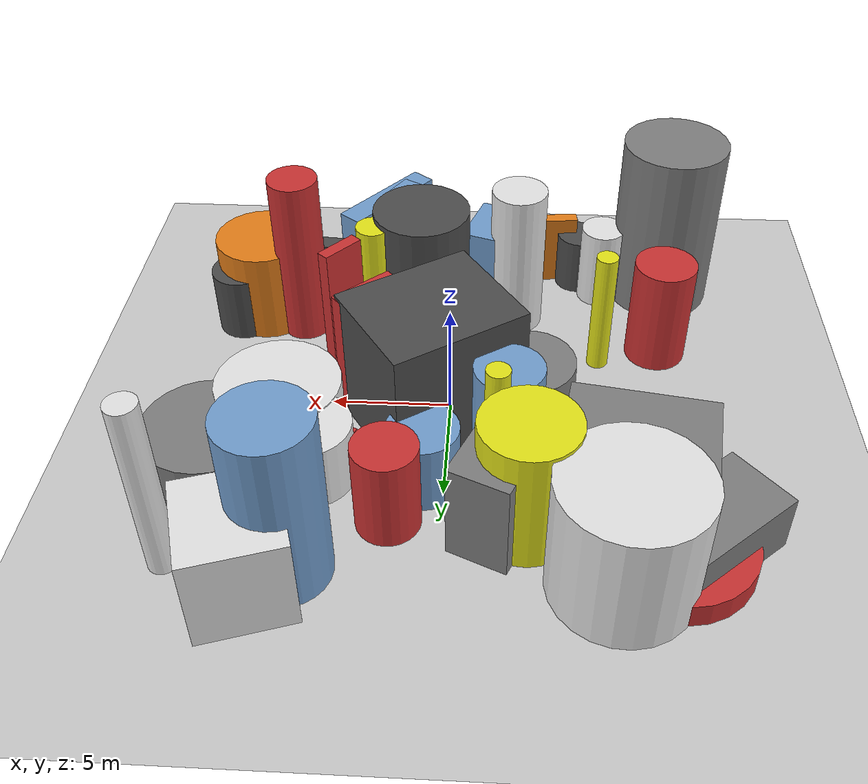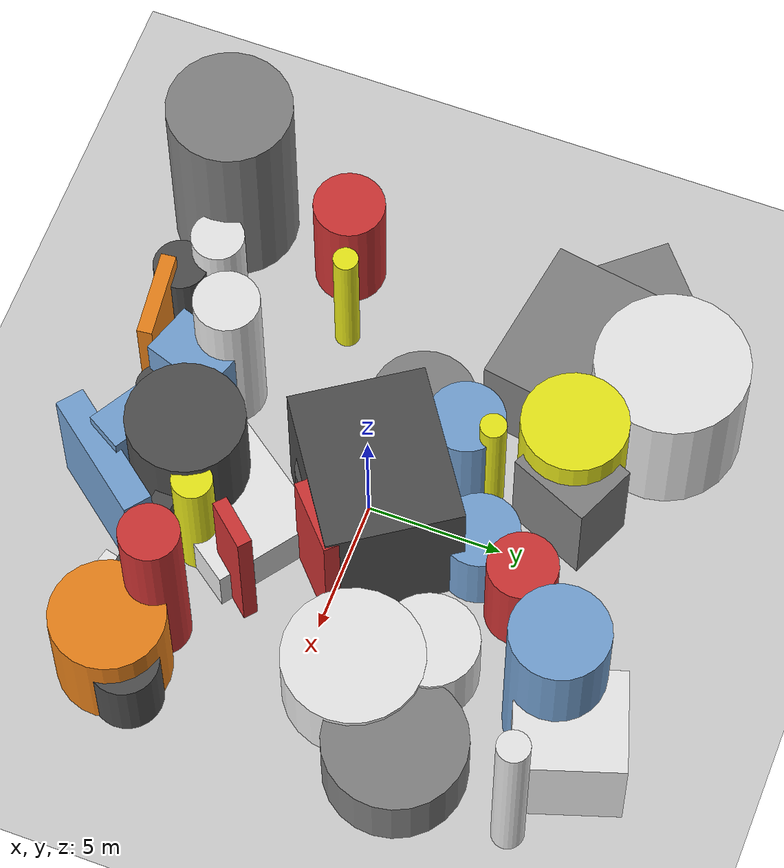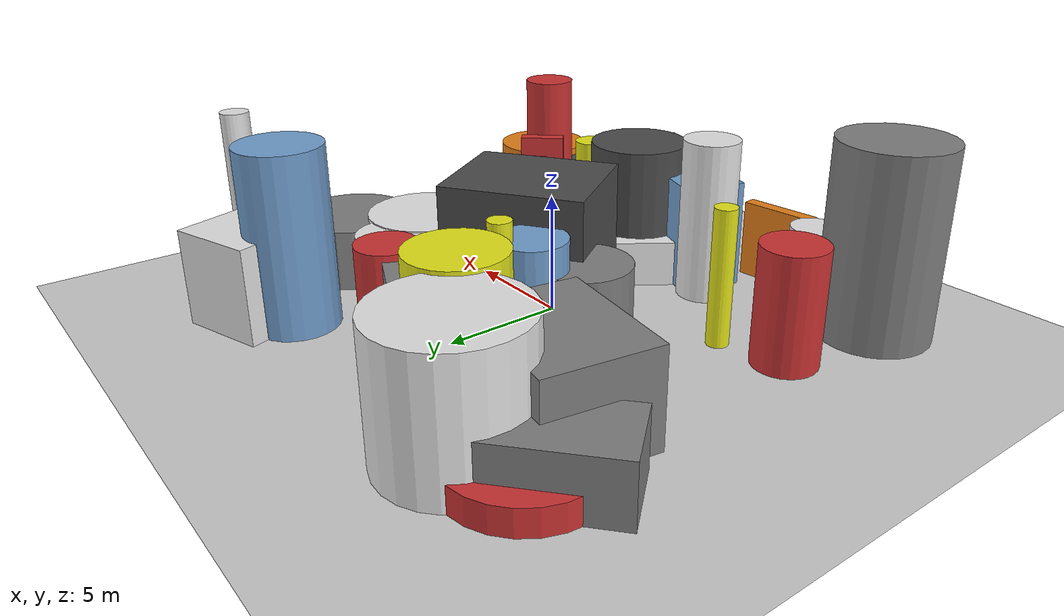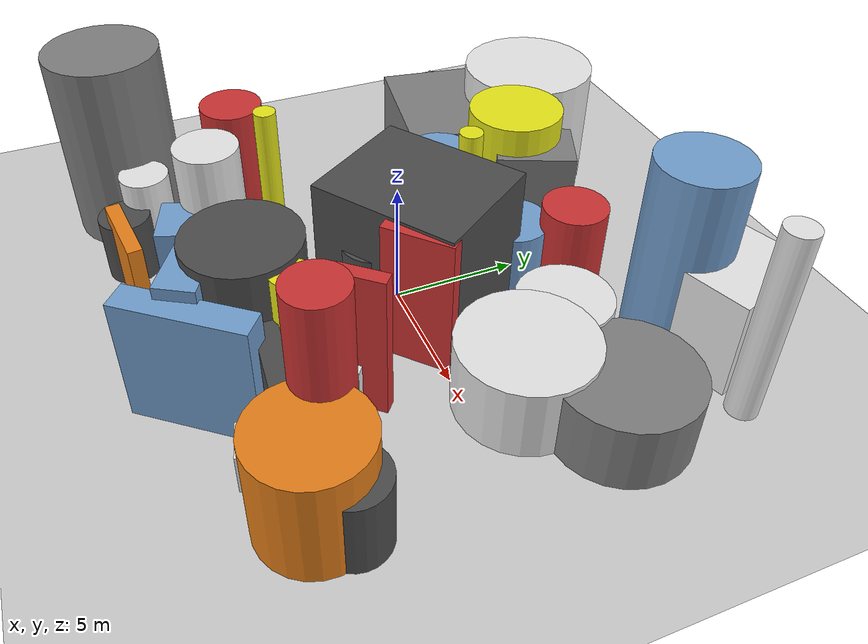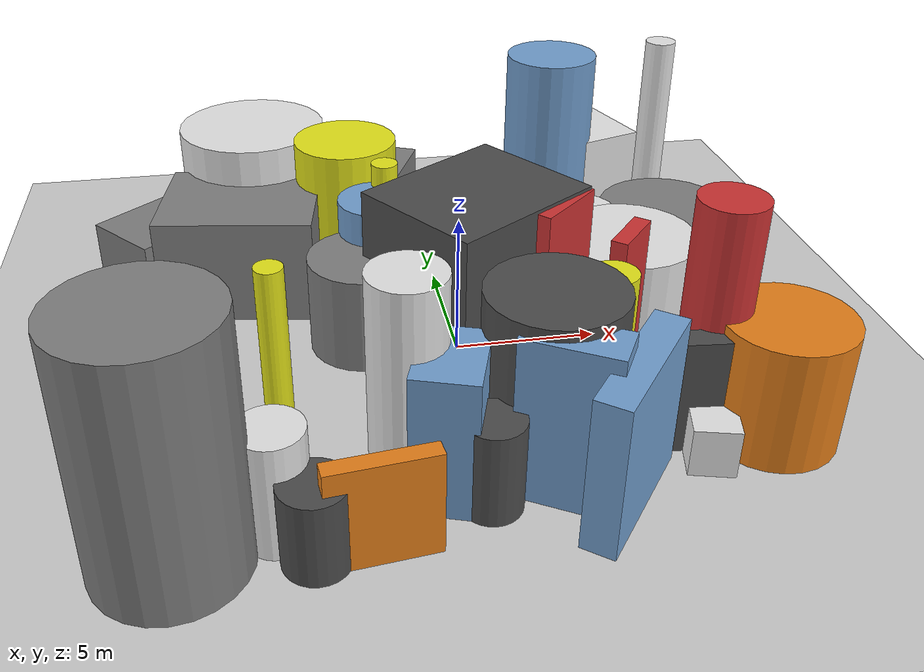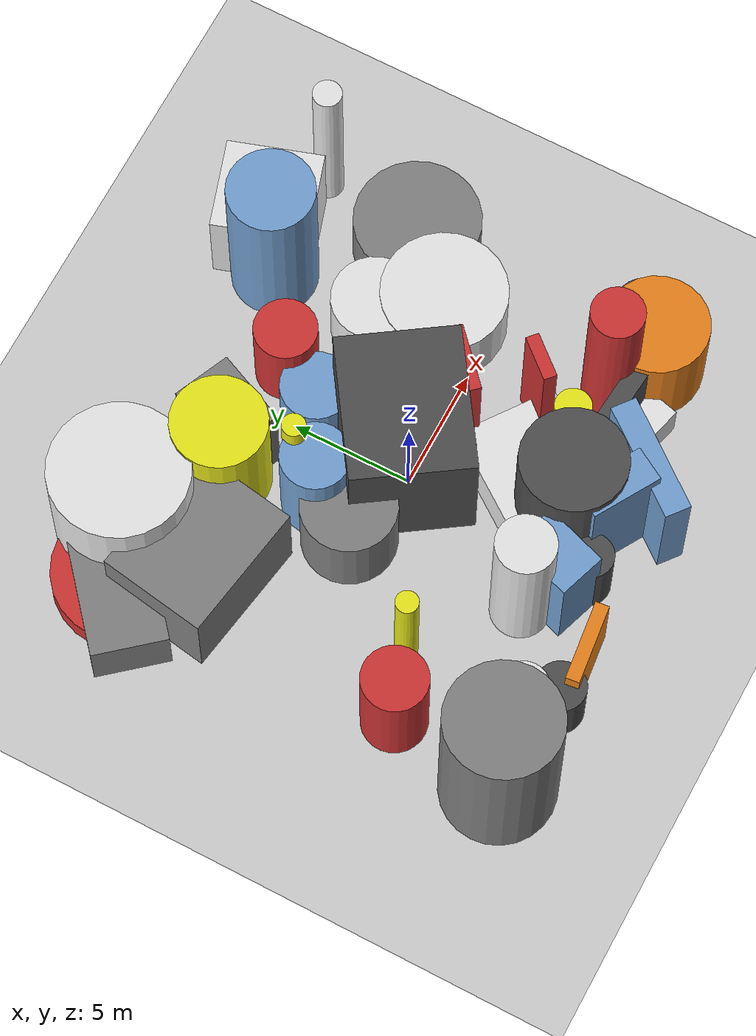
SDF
<?xml version='1.0'?>
<sdf version='1.6'>
  <world name='default'>
    <!-- Sun light -->
    <light name='sun' type='directional'>
      <cast_shadows>1</cast_shadows>
      <pose>0 0 10 0 0 0</pose>
      <diffuse>0.8 0.8 0.8 1</diffuse>
      <specular>0.2 0.2 0.2 1</specular>
      <attenuation>
        <range>1000</range>
        <constant>0.9</constant>
        <linear>0.01</linear>
        <quadratic>0.001</quadratic>
      </attenuation>
      <direction>-0.5 0.1 -0.9</direction>
    </light>

    <!-- Ground plane -->
    <model name='ground_plane'>
      <static>1</static>
      <link name='link'>
        <collision name='collision'>
          <geometry>
            <plane>
              <normal>0 0 1</normal>
              <size>100 100</size>
            </plane>
          </geometry>
          <surface>
            <contact>
              <collide_bitmask>65535</collide_bitmask>
              <ode/>
            </contact>
            <friction>
              <ode>
                <mu>100</mu>
                <mu2>50</mu2>
              </ode>
              <torsional><ode/></torsional>
            </friction>
            <bounce/>
          </surface>
          <max_contacts>10</max_contacts>
        </collision>
        <visual name='visual'>
          <cast_shadows>0</cast_shadows>
          <geometry>
            <plane>
              <normal>0 0 1</normal>
              <size>100 100</size>
            </plane>
          </geometry>
          <material>
            <script>
              <uri>file://media/materials/scripts/gazebo.material</uri>
              <n>Gazebo/Grey</n>
            </script>
          </material>
        </visual>
      </link>
    </model>

    <!-- Environment -->
    <magnetic_field>6e-06 2.3e-05 -4.2e-05</magnetic_field>
    <atmosphere type='adiabatic'/>
    <physics name='default_physics' default='0' type='ode'>
      <gravity>0 0 -9.8</gravity>
      <max_step_size>0.004</max_step_size>
      <real_time_factor>1</real_time_factor>
      <real_time_update_rate>250</real_time_update_rate>
    </physics>
    <scene>
      <ambient>0.4 0.4 0.4 1</ambient>
      <background>0.7 0.7 0.7 1</background>
      <shadows>1</shadows>
    </scene>
    <wind/>
    <spherical_coordinates>
      <surface_model>EARTH_WGS84</surface_model>
      <latitude_deg>0</latitude_deg>
      <longitude_deg>0</longitude_deg>
      <elevation>0</elevation>
      <heading_deg>0</heading_deg>
    </spherical_coordinates>

    <!-- ============ OBSTACLES (45) ============ -->
    <model name='obs_00'>
      <static>1</static>
      <link name='link'>
        <visual name='visual'>
          <geometry>
            <cylinder>
              <radius>1.3199</radius>
              <length>4.8167</length>
            </cylinder>
          </geometry>
          <material>
            <script>
              <n>Gazebo/Red</n>
              <uri>file://media/materials/scripts/gazebo.material</uri>
            </script>
            <ambient>0.8 0.2 0.2 1</ambient>
          </material>
        </visual>
        <collision name='collision'>
          <geometry>
            <cylinder>
              <radius>1.3199</radius>
              <length>4.8167</length>
            </cylinder>
          </geometry>
          <max_contacts>10</max_contacts>
          <surface>
            <contact><ode/></contact>
            <bounce/>
            <friction>
              <ode><mu>1</mu><mu2>1</mu2></ode>
              <torsional><ode/></torsional>
            </friction>
          </surface>
        </collision>
      </link>
      <pose>-8.9447 -4.1020 2.4083 0 0 0.0795</pose>
    </model>

    <model name='obs_01'>
      <static>1</static>
      <link name='link'>
        <visual name='visual'>
          <geometry>
            <cylinder>
              <radius>0.7376</radius>
              <length>5.6041</length>
            </cylinder>
          </geometry>
          <material>
            <script>
              <n>Gazebo/Yellow</n>
              <uri>file://media/materials/scripts/gazebo.material</uri>
            </script>
            <ambient>0.9 0.9 0.1 1</ambient>
          </material>
        </visual>
        <collision name='collision'>
          <geometry>
            <cylinder>
              <radius>0.7376</radius>
              <length>5.6041</length>
            </cylinder>
          </geometry>
          <max_contacts>10</max_contacts>
          <surface>
            <contact><ode/></contact>
            <bounce/>
            <friction>
              <ode><mu>1</mu><mu2>1</mu2></ode>
              <torsional><ode/></torsional>
            </friction>
          </surface>
        </collision>
      </link>
      <pose>3.6480 -5.1019 2.8021 0 0 1.6964</pose>
    </model>

    <model name='obs_02'>
      <static>1</static>
      <link name='link'>
        <visual name='visual'>
          <geometry>
            <box>
              <size>5.6886 4.4989 3.9065</size>
            </box>
          </geometry>
          <material>
            <script>
              <n>Gazebo/Grey</n>
              <uri>file://media/materials/scripts/gazebo.material</uri>
            </script>
            <ambient>0.5 0.5 0.5 1</ambient>
          </material>
        </visual>
        <collision name='collision'>
          <geometry>
            <box>
              <size>5.6886 4.4989 3.9065</size>
            </box>
          </geometry>
          <max_contacts>10</max_contacts>
          <surface>
            <contact><ode/></contact>
            <bounce/>
            <friction>
              <ode><mu>1</mu><mu2>1</mu2></ode>
              <torsional><ode/></torsional>
            </friction>
          </surface>
        </collision>
      </link>
      <pose>-7.2318 5.2615 1.9533 0 0 2.9827</pose>
    </model>

    <model name='obs_03'>
      <static>1</static>
      <link name='link'>
        <visual name='visual'>
          <geometry>
            <cylinder>
              <radius>1.9190</radius>
              <length>3.4603</length>
            </cylinder>
          </geometry>
          <material>
            <script>
              <n>Gazebo/Grey</n>
              <uri>file://media/materials/scripts/gazebo.material</uri>
            </script>
            <ambient>0.5 0.5 0.5 1</ambient>
          </material>
        </visual>
        <collision name='collision'>
          <geometry>
            <cylinder>
              <radius>1.9190</radius>
              <length>3.4603</length>
            </cylinder>
          </geometry>
          <max_contacts>10</max_contacts>
          <surface>
            <contact><ode/></contact>
            <bounce/>
            <friction>
              <ode><mu>1</mu><mu2>1</mu2></ode>
              <torsional><ode/></torsional>
            </friction>
          </surface>
        </collision>
      </link>
      <pose>-3.1646 0.9247 1.7302 0 0 1.4283</pose>
    </model>

    <model name='obs_04'>
      <static>1</static>
      <link name='link'>
        <visual name='visual'>
          <geometry>
            <cylinder>
              <radius>1.2864</radius>
              <length>3.0398</length>
            </cylinder>
          </geometry>
          <material>
            <script>
              <n>Gazebo/Blue</n>
              <uri>file://media/materials/scripts/gazebo.material</uri>
            </script>
            <ambient>0.447 0.624 0.812 1</ambient>
          </material>
        </visual>
        <collision name='collision'>
          <geometry>
            <cylinder>
              <radius>1.2864</radius>
              <length>3.0398</length>
            </cylinder>
          </geometry>
          <max_contacts>10</max_contacts>
          <surface>
            <contact><ode/></contact>
            <bounce/>
            <friction>
              <ode><mu>1</mu><mu2>1</mu2></ode>
              <torsional><ode/></torsional>
            </friction>
          </surface>
        </collision>
      </link>
      <pose>2.6525 -7.3107 1.5199 0 0 0.0560</pose>
    </model>

    <model name='obs_05'>
      <static>1</static>
      <link name='link'>
        <visual name='visual'>
          <geometry>
            <cylinder>
              <radius>1.3145</radius>
              <length>1.5698</length>
            </cylinder>
          </geometry>
          <material>
            <script>
              <n>Gazebo/DarkGrey</n>
              <uri>file://media/materials/scripts/gazebo.material</uri>
            </script>
            <ambient>0.3 0.3 0.3 1</ambient>
          </material>
        </visual>
        <collision name='collision'>
          <geometry>
            <cylinder>
              <radius>1.3145</radius>
              <length>1.5698</length>
            </cylinder>
          </geometry>
          <max_contacts>10</max_contacts>
          <surface>
            <contact><ode/></contact>
            <bounce/>
            <friction>
              <ode><mu>1</mu><mu2>1</mu2></ode>
              <torsional><ode/></torsional>
            </friction>
          </surface>
        </collision>
      </link>
      <pose>-4.2932 6.1719 0.7849 0 0 0.3008</pose>
    </model>

    <model name='obs_06'>
      <static>1</static>
      <link name='link'>
        <visual name='visual'>
          <geometry>
            <cylinder>
              <radius>1.7642</radius>
              <length>7.5440</length>
            </cylinder>
          </geometry>
          <material>
            <script>
              <n>Gazebo/Blue</n>
              <uri>file://media/materials/scripts/gazebo.material</uri>
            </script>
            <ambient>0.447 0.624 0.812 1</ambient>
          </material>
        </visual>
        <collision name='collision'>
          <geometry>
            <cylinder>
              <radius>1.7642</radius>
              <length>7.5440</length>
            </cylinder>
          </geometry>
          <max_contacts>10</max_contacts>
          <surface>
            <contact><ode/></contact>
            <bounce/>
            <friction>
              <ode><mu>1</mu><mu2>1</mu2></ode>
              <torsional><ode/></torsional>
            </friction>
          </surface>
        </collision>
      </link>
      <pose>5.4614 8.9017 3.7720 0 0 1.0480</pose>
    </model>

    <model name='obs_07'>
      <static>1</static>
      <link name='link'>
        <visual name='visual'>
          <geometry>
            <box>
              <size>1.4470 2.2078 1.6461</size>
            </box>
          </geometry>
          <material>
            <script>
              <n>Gazebo/White</n>
              <uri>file://media/materials/scripts/gazebo.material</uri>
            </script>
            <ambient>0.9 0.9 0.9 1</ambient>
          </material>
        </visual>
        <collision name='collision'>
          <geometry>
            <box>
              <size>1.4470 2.2078 1.6461</size>
            </box>
          </geometry>
          <max_contacts>10</max_contacts>
          <surface>
            <contact><ode/></contact>
            <bounce/>
            <friction>
              <ode><mu>1</mu><mu2>1</mu2></ode>
              <torsional><ode/></torsional>
            </friction>
          </surface>
        </collision>
      </link>
      <pose>6.4687 -6.9209 0.8231 0 0 2.8891</pose>
    </model>

    <model name='obs_08'>
      <static>1</static>
      <link name='link'>
        <visual name='visual'>
          <geometry>
            <box>
              <size>3.0630 5.4157 2.4187</size>
            </box>
          </geometry>
          <material>
            <script>
              <n>Gazebo/Grey</n>
              <uri>file://media/materials/scripts/gazebo.material</uri>
            </script>
            <ambient>0.5 0.5 0.5 1</ambient>
          </material>
        </visual>
        <collision name='collision'>
          <geometry>
            <box>
              <size>3.0630 5.4157 2.4187</size>
            </box>
          </geometry>
          <max_contacts>10</max_contacts>
          <surface>
            <contact><ode/></contact>
            <bounce/>
            <friction>
              <ode><mu>1</mu><mu2>1</mu2></ode>
              <torsional><ode/></torsional>
            </friction>
          </surface>
        </collision>
      </link>
      <pose>-9.7519 7.4675 1.2093 0 0 2.2786</pose>
    </model>

    <model name='obs_09'>
      <static>1</static>
      <link name='link'>
        <visual name='visual'>
          <geometry>
            <cylinder>
              <radius>1.7817</radius>
              <length>2.8194</length>
            </cylinder>
          </geometry>
          <material>
            <script>
              <n>Gazebo/White</n>
              <uri>file://media/materials/scripts/gazebo.material</uri>
            </script>
            <ambient>0.9 0.9 0.9 1</ambient>
          </material>
        </visual>
        <collision name='collision'>
          <geometry>
            <cylinder>
              <radius>1.7817</radius>
              <length>2.8194</length>
            </cylinder>
          </geometry>
          <max_contacts>10</max_contacts>
          <surface>
            <contact><ode/></contact>
            <bounce/>
            <friction>
              <ode><mu>1</mu><mu2>1</mu2></ode>
              <torsional><ode/></torsional>
            </friction>
          </surface>
        </collision>
      </link>
      <pose>5.2614 4.2519 1.4097 0 0 2.1752</pose>
    </model>

    <model name='obs_10'>
      <static>1</static>
      <link name='link'>
        <visual name='visual'>
          <geometry>
            <cylinder>
              <radius>0.5882</radius>
              <length>7.8674</length>
            </cylinder>
          </geometry>
          <material>
            <script>
              <n>Gazebo/White</n>
              <uri>file://media/materials/scripts/gazebo.material</uri>
            </script>
            <ambient>0.9 0.9 0.9 1</ambient>
          </material>
        </visual>
        <collision name='collision'>
          <geometry>
            <cylinder>
              <radius>0.5882</radius>
              <length>7.8674</length>
            </cylinder>
          </geometry>
          <max_contacts>10</max_contacts>
          <surface>
            <contact><ode/></contact>
            <bounce/>
            <friction>
              <ode><mu>1</mu><mu2>1</mu2></ode>
              <torsional><ode/></torsional>
            </friction>
          </surface>
        </collision>
      </link>
      <pose>9.9752 8.8615 3.9337 0 0 1.4008</pose>
    </model>

    <model name='obs_11'>
      <static>1</static>
      <link name='link'>
        <visual name='visual'>
          <geometry>
            <cylinder>
              <radius>0.9334</radius>
              <length>3.0762</length>
            </cylinder>
          </geometry>
          <material>
            <script>
              <n>Gazebo/DarkGrey</n>
              <uri>file://media/materials/scripts/gazebo.material</uri>
            </script>
            <ambient>0.3 0.3 0.3 1</ambient>
          </material>
        </visual>
        <collision name='collision'>
          <geometry>
            <cylinder>
              <radius>0.9334</radius>
              <length>3.0762</length>
            </cylinder>
          </geometry>
          <max_contacts>10</max_contacts>
          <surface>
            <contact><ode/></contact>
            <bounce/>
            <friction>
              <ode><mu>1</mu><mu2>1</mu2></ode>
              <torsional><ode/></torsional>
            </friction>
          </surface>
        </collision>
      </link>
      <pose>-0.5198 -8.0830 1.5381 0 0 0.9924</pose>
    </model>

    <model name='obs_12'>
      <static>1</static>
      <link name='link'>
        <visual name='visual'>
          <geometry>
            <cylinder>
              <radius>0.6479</radius>
              <length>2.7353</length>
            </cylinder>
          </geometry>
          <material>
            <script>
              <n>Gazebo/Yellow</n>
              <uri>file://media/materials/scripts/gazebo.material</uri>
            </script>
            <ambient>0.9 0.9 0.1 1</ambient>
          </material>
        </visual>
        <collision name='collision'>
          <geometry>
            <cylinder>
              <radius>0.6479</radius>
              <length>2.7353</length>
            </cylinder>
          </geometry>
          <max_contacts>10</max_contacts>
          <surface>
            <contact><ode/></contact>
            <bounce/>
            <friction>
              <ode><mu>1</mu><mu2>1</mu2></ode>
              <torsional><ode/></torsional>
            </friction>
          </surface>
        </collision>
      </link>
      <pose>0.0672 2.1737 1.3677 0 0 3.0668</pose>
    </model>

    <model name='obs_13'>
      <static>1</static>
      <link name='link'>
        <visual name='visual'>
          <geometry>
            <cylinder>
              <radius>1.2773</radius>
              <length>3.9804</length>
            </cylinder>
          </geometry>
          <material>
            <script>
              <n>Gazebo/Red</n>
              <uri>file://media/materials/scripts/gazebo.material</uri>
            </script>
            <ambient>0.8 0.2 0.2 1</ambient>
          </material>
        </visual>
        <collision name='collision'>
          <geometry>
            <cylinder>
              <radius>1.2773</radius>
              <length>3.9804</length>
            </cylinder>
          </geometry>
          <max_contacts>10</max_contacts>
          <surface>
            <contact><ode/></contact>
            <bounce/>
            <friction>
              <ode><mu>1</mu><mu2>1</mu2></ode>
              <torsional><ode/></torsional>
            </friction>
          </surface>
        </collision>
      </link>
      <pose>1.9906 6.4616 1.9902 0 0 0.2231</pose>
    </model>

    <model name='obs_14'>
      <static>1</static>
      <link name='link'>
        <visual name='visual'>
          <geometry>
            <box>
              <size>0.5652 3.2773 3.3876</size>
            </box>
          </geometry>
          <material>
            <script>
              <n>Gazebo/Orange</n>
              <uri>file://media/materials/scripts/gazebo.material</uri>
            </script>
            <ambient>0.9 0.5 0.1 1</ambient>
          </material>
        </visual>
        <collision name='collision'>
          <geometry>
            <box>
              <size>0.5652 3.2773 3.3876</size>
            </box>
          </geometry>
          <max_contacts>10</max_contacts>
          <surface>
            <contact><ode/></contact>
            <bounce/>
            <friction>
              <ode><mu>1</mu><mu2>1</mu2></ode>
              <torsional><ode/></torsional>
            </friction>
          </surface>
        </collision>
      </link>
      <pose>-3.8221 -9.5980 1.6938 0 0 1.6849</pose>
    </model>

    <model name='obs_15'>
      <static>1</static>
      <link name='link'>
        <visual name='visual'>
          <geometry>
            <cylinder>
              <radius>1.3204</radius>
              <length>3.5024</length>
            </cylinder>
          </geometry>
          <material>
            <script>
              <n>Gazebo/DarkGrey</n>
              <uri>file://media/materials/scripts/gazebo.material</uri>
            </script>
            <ambient>0.3 0.3 0.3 1</ambient>
          </material>
        </visual>
        <collision name='collision'>
          <geometry>
            <cylinder>
              <radius>1.3204</radius>
              <length>3.5024</length>
            </cylinder>
          </geometry>
          <max_contacts>10</max_contacts>
          <surface>
            <contact><ode/></contact>
            <bounce/>
            <friction>
              <ode><mu>1</mu><mu2>1</mu2></ode>
              <torsional><ode/></torsional>
            </friction>
          </surface>
        </collision>
      </link>
      <pose>0.5854 -1.1339 1.7512 0 0 2.4050</pose>
    </model>

    <model name='obs_16'>
      <static>1</static>
      <link name='link'>
        <visual name='visual'>
          <geometry>
            <cylinder>
              <radius>2.5538</radius>
              <length>2.8765</length>
            </cylinder>
          </geometry>
          <material>
            <script>
              <n>Gazebo/White</n>
              <uri>file://media/materials/scripts/gazebo.material</uri>
            </script>
            <ambient>0.9 0.9 0.9 1</ambient>
          </material>
        </visual>
        <collision name='collision'>
          <geometry>
            <cylinder>
              <radius>2.5538</radius>
              <length>2.8765</length>
            </cylinder>
          </geometry>
          <max_contacts>10</max_contacts>
          <surface>
            <contact><ode/></contact>
            <bounce/>
            <friction>
              <ode><mu>1</mu><mu2>1</mu2></ode>
              <torsional><ode/></torsional>
            </friction>
          </surface>
        </collision>
      </link>
      <pose>6.7511 1.9867 1.4383 0 0 1.5808</pose>
    </model>

    <model name='obs_17'>
      <static>1</static>
      <link name='link'>
        <visual name='visual'>
          <geometry>
            <cylinder>
              <radius>2.0687</radius>
              <length>4.2086</length>
            </cylinder>
          </geometry>
          <material>
            <script>
              <n>Gazebo/Orange</n>
              <uri>file://media/materials/scripts/gazebo.material</uri>
            </script>
            <ambient>0.9 0.5 0.1 1</ambient>
          </material>
        </visual>
        <collision name='collision'>
          <geometry>
            <cylinder>
              <radius>2.0687</radius>
              <length>4.2086</length>
            </cylinder>
          </geometry>
          <max_contacts>10</max_contacts>
          <surface>
            <contact><ode/></contact>
            <bounce/>
            <friction>
              <ode><mu>1</mu><mu2>1</mu2></ode>
              <torsional><ode/></torsional>
            </friction>
          </surface>
        </collision>
      </link>
      <pose>8.8200 -6.2203 2.1043 0 0 2.4082</pose>
    </model>

    <model name='obs_18'>
      <static>1</static>
      <link name='link'>
        <visual name='visual'>
          <geometry>
            <cylinder>
              <radius>2.9676</radius>
              <length>1.0503</length>
            </cylinder>
          </geometry>
          <material>
            <script>
              <n>Gazebo/Red</n>
              <uri>file://media/materials/scripts/gazebo.material</uri>
            </script>
            <ambient>0.8 0.2 0.2 1</ambient>
          </material>
        </visual>
        <collision name='collision'>
          <geometry>
            <cylinder>
              <radius>2.9676</radius>
              <length>1.0503</length>
            </cylinder>
          </geometry>
          <max_contacts>10</max_contacts>
          <surface>
            <contact><ode/></contact>
            <bounce/>
            <friction>
              <ode><mu>1</mu><mu2>1</mu2></ode>
              <torsional><ode/></torsional>
            </friction>
          </surface>
        </collision>
      </link>
      <pose>-8.6935 7.6959 0.5252 0 0 1.0818</pose>
    </model>

    <model name='obs_19'>
      <static>1</static>
      <link name='link'>
        <visual name='visual'>
          <geometry>
            <cylinder>
              <radius>1.2669</radius>
              <length>3.0052</length>
            </cylinder>
          </geometry>
          <material>
            <script>
              <n>Gazebo/DarkGrey</n>
              <uri>file://media/materials/scripts/gazebo.material</uri>
            </script>
            <ambient>0.3 0.3 0.3 1</ambient>
          </material>
        </visual>
        <collision name='collision'>
          <geometry>
            <cylinder>
              <radius>1.2669</radius>
              <length>3.0052</length>
            </cylinder>
          </geometry>
          <max_contacts>10</max_contacts>
          <surface>
            <contact><ode/></contact>
            <bounce/>
            <friction>
              <ode><mu>1</mu><mu2>1</mu2></ode>
              <torsional><ode/></torsional>
            </friction>
          </surface>
        </collision>
      </link>
      <pose>9.7789 -5.3092 1.5026 0 0 2.3118</pose>
    </model>

    <model name='obs_20'>
      <static>1</static>
      <link name='link'>
        <visual name='visual'>
          <geometry>
            <box>
              <size>2.0065 2.7507 4.6880</size>
            </box>
          </geometry>
          <material>
            <script>
              <n>Gazebo/Blue</n>
              <uri>file://media/materials/scripts/gazebo.material</uri>
            </script>
            <ambient>0.447 0.624 0.812 1</ambient>
          </material>
        </visual>
        <collision name='collision'>
          <geometry>
            <box>
              <size>2.0065 2.7507 4.6880</size>
            </box>
          </geometry>
          <max_contacts>10</max_contacts>
          <surface>
            <contact><ode/></contact>
            <bounce/>
            <friction>
              <ode><mu>1</mu><mu2>1</mu2></ode>
              <torsional><ode/></torsional>
            </friction>
          </surface>
        </collision>
      </link>
      <pose>-1.5744 -7.1123 2.3440 0 0 2.8176</pose>
    </model>

    <model name='obs_21'>
      <static>1</static>
      <link name='link'>
        <visual name='visual'>
          <geometry>
            <cylinder>
              <radius>2.5723</radius>
              <length>2.6783</length>
            </cylinder>
          </geometry>
          <material>
            <script>
              <n>Gazebo/Grey</n>
              <uri>file://media/materials/scripts/gazebo.material</uri>
            </script>
            <ambient>0.5 0.5 0.5 1</ambient>
          </material>
        </visual>
        <collision name='collision'>
          <geometry>
            <cylinder>
              <radius>2.5723</radius>
              <length>2.6783</length>
            </cylinder>
          </geometry>
          <max_contacts>10</max_contacts>
          <surface>
            <contact><ode/></contact>
            <bounce/>
            <friction>
              <ode><mu>1</mu><mu2>1</mu2></ode>
              <torsional><ode/></torsional>
            </friction>
          </surface>
        </collision>
      </link>
      <pose>9.1063 4.4087 1.3391 0 0 1.8812</pose>
    </model>

    <model name='obs_22'>
      <static>1</static>
      <link name='link'>
        <visual name='visual'>
          <geometry>
            <cylinder>
              <radius>0.9868</radius>
              <length>3.7595</length>
            </cylinder>
          </geometry>
          <material>
            <script>
              <n>Gazebo/White</n>
              <uri>file://media/materials/scripts/gazebo.material</uri>
            </script>
            <ambient>0.9 0.9 0.9 1</ambient>
          </material>
        </visual>
        <collision name='collision'>
          <geometry>
            <cylinder>
              <radius>0.9868</radius>
              <length>3.7595</length>
            </cylinder>
          </geometry>
          <max_contacts>10</max_contacts>
          <surface>
            <contact><ode/></contact>
            <bounce/>
            <friction>
              <ode><mu>1</mu><mu2>1</mu2></ode>
              <torsional><ode/></torsional>
            </friction>
          </surface>
        </collision>
      </link>
      <pose>-6.6112 -8.3246 1.8798 0 0 2.4303</pose>
    </model>

    <model name='obs_23'>
      <static>1</static>
      <link name='link'>
        <visual name='visual'>
          <geometry>
            <cylinder>
              <radius>0.4609</radius>
              <length>5.6678</length>
            </cylinder>
          </geometry>
          <material>
            <script>
              <n>Gazebo/Yellow</n>
              <uri>file://media/materials/scripts/gazebo.material</uri>
            </script>
            <ambient>0.9 0.9 0.1 1</ambient>
          </material>
        </visual>
        <collision name='collision'>
          <geometry>
            <cylinder>
              <radius>0.4609</radius>
              <length>5.6678</length>
            </cylinder>
          </geometry>
          <max_contacts>10</max_contacts>
          <surface>
            <contact><ode/></contact>
            <bounce/>
            <friction>
              <ode><mu>1</mu><mu2>1</mu2></ode>
              <torsional><ode/></torsional>
            </friction>
          </surface>
        </collision>
      </link>
      <pose>-6.3430 -3.2384 2.8339 0 0 2.8622</pose>
    </model>

    <model name='obs_24'>
      <static>1</static>
      <link name='link'>
        <visual name='visual'>
          <geometry>
            <cylinder>
              <radius>1.0756</radius>
              <length>7.8145</length>
            </cylinder>
          </geometry>
          <material>
            <script>
              <n>Gazebo/Red</n>
              <uri>file://media/materials/scripts/gazebo.material</uri>
            </script>
            <ambient>0.8 0.2 0.2 1</ambient>
          </material>
        </visual>
        <collision name='collision'>
          <geometry>
            <cylinder>
              <radius>1.0756</radius>
              <length>7.8145</length>
            </cylinder>
          </geometry>
          <max_contacts>10</max_contacts>
          <surface>
            <contact><ode/></contact>
            <bounce/>
            <friction>
              <ode><mu>1</mu><mu2>1</mu2></ode>
              <torsional><ode/></torsional>
            </friction>
          </surface>
        </collision>
      </link>
      <pose>6.9547 -5.2036 3.9073 0 0 0.7216</pose>
    </model>

    <model name='obs_25'>
      <static>1</static>
      <link name='link'>
        <visual name='visual'>
          <geometry>
            <box>
              <size>1.8813 0.5437 5.8709</size>
            </box>
          </geometry>
          <material>
            <script>
              <n>Gazebo/Red</n>
              <uri>file://media/materials/scripts/gazebo.material</uri>
            </script>
            <ambient>0.8 0.2 0.2 1</ambient>
          </material>
        </visual>
        <collision name='collision'>
          <geometry>
            <box>
              <size>1.8813 0.5437 5.8709</size>
            </box>
          </geometry>
          <max_contacts>10</max_contacts>
          <surface>
            <contact><ode/></contact>
            <bounce/>
            <friction>
              <ode><mu>1</mu><mu2>1</mu2></ode>
              <torsional><ode/></torsional>
            </friction>
          </surface>
        </collision>
      </link>
      <pose>4.7896 -3.1388 2.9355 0 0 0.8531</pose>
    </model>

    <model name='obs_26'>
      <static>1</static>
      <link name='link'>
        <visual name='visual'>
          <geometry>
            <box>
              <size>3.1799 2.4760 4.2749</size>
            </box>
          </geometry>
          <material>
            <script>
              <n>Gazebo/Grey</n>
              <uri>file://media/materials/scripts/gazebo.material</uri>
            </script>
            <ambient>0.5 0.5 0.5 1</ambient>
          </material>
        </visual>
        <collision name='collision'>
          <geometry>
            <box>
              <size>3.1799 2.4760 4.2749</size>
            </box>
          </geometry>
          <max_contacts>10</max_contacts>
          <surface>
            <contact><ode/></contact>
            <bounce/>
            <friction>
              <ode><mu>1</mu><mu2>1</mu2></ode>
              <torsional><ode/></torsional>
            </friction>
          </surface>
        </collision>
      </link>
      <pose>-2.0194 6.8573 2.1375 0 0 1.1580</pose>
    </model>

    <model name='obs_27'>
      <static>1</static>
      <link name='link'>
        <visual name='visual'>
          <geometry>
            <cylinder>
              <radius>1.2020</radius>
              <length>6.8882</length>
            </cylinder>
          </geometry>
          <material>
            <script>
              <n>Gazebo/White</n>
              <uri>file://media/materials/scripts/gazebo.material</uri>
            </script>
            <ambient>0.9 0.9 0.9 1</ambient>
          </material>
        </visual>
        <collision name='collision'>
          <geometry>
            <cylinder>
              <radius>1.2020</radius>
              <length>6.8882</length>
            </cylinder>
          </geometry>
          <max_contacts>10</max_contacts>
          <surface>
            <contact><ode/></contact>
            <bounce/>
            <friction>
              <ode><mu>1</mu><mu2>1</mu2></ode>
              <torsional><ode/></torsional>
            </friction>
          </surface>
        </collision>
      </link>
      <pose>-2.6589 -6.2693 3.4441 0 0 2.6211</pose>
    </model>

    <model name='obs_28'>
      <static>1</static>
      <link name='link'>
        <visual name='visual'>
          <geometry>
            <box>
              <size>4.9496 5.9355 5.8550</size>
            </box>
          </geometry>
          <material>
            <script>
              <n>Gazebo/DarkGrey</n>
              <uri>file://media/materials/scripts/gazebo.material</uri>
            </script>
            <ambient>0.3 0.3 0.3 1</ambient>
          </material>
        </visual>
        <collision name='collision'>
          <geometry>
            <box>
              <size>4.9496 5.9355 5.8550</size>
            </box>
          </geometry>
          <max_contacts>10</max_contacts>
          <surface>
            <contact><ode/></contact>
            <bounce/>
            <friction>
              <ode><mu>1</mu><mu2>1</mu2></ode>
              <torsional><ode/></torsional>
            </friction>
          </surface>
        </collision>
      </link>
      <pose>0.7063 0.5592 2.9275 0 0 2.1636</pose>
    </model>

    <model name='obs_29'>
      <static>1</static>
      <link name='link'>
        <visual name='visual'>
          <geometry>
            <box>
              <size>3.1171 2.7562 5.7320</size>
            </box>
          </geometry>
          <material>
            <script>
              <n>Gazebo/Red</n>
              <uri>file://media/materials/scripts/gazebo.material</uri>
            </script>
            <ambient>0.8 0.2 0.2 1</ambient>
          </material>
        </visual>
        <collision name='collision'>
          <geometry>
            <box>
              <size>3.1171 2.7562 5.7320</size>
            </box>
          </geometry>
          <max_contacts>10</max_contacts>
          <surface>
            <contact><ode/></contact>
            <bounce/>
            <friction>
              <ode><mu>1</mu><mu2>1</mu2></ode>
              <torsional><ode/></torsional>
            </friction>
          </surface>
        </collision>
      </link>
      <pose>2.5880 0.3726 2.8660 0 0 2.3147</pose>
    </model>

    <model name='obs_30'>
      <static>1</static>
      <link name='link'>
        <visual name='visual'>
          <geometry>
            <cylinder>
              <radius>2.2986</radius>
              <length>7.9777</length>
            </cylinder>
          </geometry>
          <material>
            <script>
              <n>Gazebo/Grey</n>
              <uri>file://media/materials/scripts/gazebo.material</uri>
            </script>
            <ambient>0.5 0.5 0.5 1</ambient>
          </material>
        </visual>
        <collision name='collision'>
          <geometry>
            <cylinder>
              <radius>2.2986</radius>
              <length>7.9777</length>
            </cylinder>
          </geometry>
          <max_contacts>10</max_contacts>
          <surface>
            <contact><ode/></contact>
            <bounce/>
            <friction>
              <ode><mu>1</mu><mu2>1</mu2></ode>
              <torsional><ode/></torsional>
            </friction>
          </surface>
        </collision>
      </link>
      <pose>-9.4747 -8.8221 3.9888 0 0 0.0091</pose>
    </model>

    <model name='obs_31'>
      <static>1</static>
      <link name='link'>
        <visual name='visual'>
          <geometry>
            <cylinder>
              <radius>1.9251</radius>
              <length>5.4525</length>
            </cylinder>
          </geometry>
          <material>
            <script>
              <n>Gazebo/Yellow</n>
              <uri>file://media/materials/scripts/gazebo.material</uri>
            </script>
            <ambient>0.9 0.9 0.1 1</ambient>
          </material>
        </visual>
        <collision name='collision'>
          <geometry>
            <cylinder>
              <radius>1.9251</radius>
              <length>5.4525</length>
            </cylinder>
          </geometry>
          <max_contacts>10</max_contacts>
          <surface>
            <contact><ode/></contact>
            <bounce/>
            <friction>
              <ode><mu>1</mu><mu2>1</mu2></ode>
              <torsional><ode/></torsional>
            </friction>
          </surface>
        </collision>
      </link>
      <pose>-3.1653 6.5107 2.7262 0 0 1.3607</pose>
    </model>

    <model name='obs_32'>
      <static>1</static>
      <link name='link'>
        <visual name='visual'>
          <geometry>
            <cylinder>
              <radius>2.1366</radius>
              <length>5.8548</length>
            </cylinder>
          </geometry>
          <material>
            <script>
              <n>Gazebo/DarkGrey</n>
              <uri>file://media/materials/scripts/gazebo.material</uri>
            </script>
            <ambient>0.3 0.3 0.3 1</ambient>
          </material>
        </visual>
        <collision name='collision'>
          <geometry>
            <cylinder>
              <radius>2.1366</radius>
              <length>5.8548</length>
            </cylinder>
          </geometry>
          <max_contacts>10</max_contacts>
          <surface>
            <contact><ode/></contact>
            <bounce/>
            <friction>
              <ode><mu>1</mu><mu2>1</mu2></ode>
              <torsional><ode/></torsional>
            </friction>
          </surface>
        </collision>
      </link>
      <pose>1.6085 -6.1585 2.9274 0 0 0.9300</pose>
    </model>

    <model name='obs_33'>
      <static>1</static>
      <link name='link'>
        <visual name='visual'>
          <geometry>
            <box>
              <size>1.4732 2.9661 5.4761</size>
            </box>
          </geometry>
          <material>
            <script>
              <n>Gazebo/Blue</n>
              <uri>file://media/materials/scripts/gazebo.material</uri>
            </script>
            <ambient>0.447 0.624 0.812 1</ambient>
          </material>
        </visual>
        <collision name='collision'>
          <geometry>
            <box>
              <size>1.4732 2.9661 5.4761</size>
            </box>
          </geometry>
          <max_contacts>10</max_contacts>
          <surface>
            <contact><ode/></contact>
            <bounce/>
            <friction>
              <ode><mu>1</mu><mu2>1</mu2></ode>
              <torsional><ode/></torsional>
            </friction>
          </surface>
        </collision>
      </link>
      <pose>1.6895 -7.9524 2.7381 0 0 1.0386</pose>
    </model>

    <model name='obs_34'>
      <static>1</static>
      <link name='link'>
        <visual name='visual'>
          <geometry>
            <box>
              <size>3.7397 3.9328 4.0503</size>
            </box>
          </geometry>
          <material>
            <script>
              <n>Gazebo/White</n>
              <uri>file://media/materials/scripts/gazebo.material</uri>
            </script>
            <ambient>0.9 0.9 0.9 1</ambient>
          </material>
        </visual>
        <collision name='collision'>
          <geometry>
            <box>
              <size>3.7397 3.9328 4.0503</size>
            </box>
          </geometry>
          <max_contacts>10</max_contacts>
          <surface>
            <contact><ode/></contact>
            <bounce/>
            <friction>
              <ode><mu>1</mu><mu2>1</mu2></ode>
              <torsional><ode/></torsional>
            </friction>
          </surface>
        </collision>
      </link>
      <pose>6.8767 9.9113 2.0252 0 0 0.3157</pose>
    </model>

    <model name='obs_35'>
      <static>1</static>
      <link name='link'>
        <visual name='visual'>
          <geometry>
            <cylinder>
              <radius>0.3121</radius>
              <length>2.7347</length>
            </cylinder>
          </geometry>
          <material>
            <script>
              <n>Gazebo/Yellow</n>
              <uri>file://media/materials/scripts/gazebo.material</uri>
            </script>
            <ambient>0.9 0.9 0.1 1</ambient>
          </material>
        </visual>
        <collision name='collision'>
          <geometry>
            <cylinder>
              <radius>0.3121</radius>
              <length>2.7347</length>
            </cylinder>
          </geometry>
          <max_contacts>10</max_contacts>
          <surface>
            <contact><ode/></contact>
            <bounce/>
            <friction>
              <ode><mu>1</mu><mu2>1</mu2></ode>
              <torsional><ode/></torsional>
            </friction>
          </surface>
        </collision>
      </link>
      <pose>8.5819 1.8513 1.3674 0 0 3.0822</pose>
    </model>

    <model name='obs_36'>
      <static>1</static>
      <link name='link'>
        <visual name='visual'>
          <geometry>
            <cylinder>
              <radius>2.7988</radius>
              <length>5.2932</length>
            </cylinder>
          </geometry>
          <material>
            <script>
              <n>Gazebo/White</n>
              <uri>file://media/materials/scripts/gazebo.material</uri>
            </script>
            <ambient>0.9 0.9 0.9 1</ambient>
          </material>
        </visual>
        <collision name='collision'>
          <geometry>
            <cylinder>
              <radius>2.7988</radius>
              <length>5.2932</length>
            </cylinder>
          </geometry>
          <max_contacts>10</max_contacts>
          <surface>
            <contact><ode/></contact>
            <bounce/>
            <friction>
              <ode><mu>1</mu><mu2>1</mu2></ode>
              <torsional><ode/></torsional>
            </friction>
          </surface>
        </collision>
      </link>
      <pose>-6.6119 8.9351 2.6466 0 0 1.3821</pose>
    </model>

    <model name='obs_37'>
      <static>1</static>
      <link name='link'>
        <visual name='visual'>
          <geometry>
            <box>
              <size>5.5410 3.1288 1.3020</size>
            </box>
          </geometry>
          <material>
            <script>
              <n>Gazebo/Red</n>
              <uri>file://media/materials/scripts/gazebo.material</uri>
            </script>
            <ambient>0.8 0.2 0.2 1</ambient>
          </material>
        </visual>
        <collision name='collision'>
          <geometry>
            <box>
              <size>5.5410 3.1288 1.3020</size>
            </box>
          </geometry>
          <max_contacts>10</max_contacts>
          <surface>
            <contact><ode/></contact>
            <bounce/>
            <friction>
              <ode><mu>1</mu><mu2>1</mu2></ode>
              <torsional><ode/></torsional>
            </friction>
          </surface>
        </collision>
      </link>
      <pose>6.7171 3.2108 0.6510 0 0 2.7151</pose>
    </model>

    <model name='obs_38'>
      <static>1</static>
      <link name='link'>
        <visual name='visual'>
          <geometry>
            <cylinder>
              <radius>1.0126</radius>
              <length>2.6905</length>
            </cylinder>
          </geometry>
          <material>
            <script>
              <n>Gazebo/DarkGrey</n>
              <uri>file://media/materials/scripts/gazebo.material</uri>
            </script>
            <ambient>0.3 0.3 0.3 1</ambient>
          </material>
        </visual>
        <collision name='collision'>
          <geometry>
            <cylinder>
              <radius>1.0126</radius>
              <length>2.6905</length>
            </cylinder>
          </geometry>
          <max_contacts>10</max_contacts>
          <surface>
            <contact><ode/></contact>
            <bounce/>
            <friction>
              <ode><mu>1</mu><mu2>1</mu2></ode>
              <torsional><ode/></torsional>
            </friction>
          </surface>
        </collision>
      </link>
      <pose>-5.6137 -9.4278 1.3452 0 0 2.8322</pose>
    </model>

    <model name='obs_39'>
      <static>1</static>
      <link name='link'>
        <visual name='visual'>
          <geometry>
            <box>
              <size>0.8103 5.5581 3.8881</size>
            </box>
          </geometry>
          <material>
            <script>
              <n>Gazebo/DarkGrey</n>
              <uri>file://media/materials/scripts/gazebo.material</uri>
            </script>
            <ambient>0.3 0.3 0.3 1</ambient>
          </material>
        </visual>
        <collision name='collision'>
          <geometry>
            <box>
              <size>0.8103 5.5581 3.8881</size>
            </box>
          </geometry>
          <max_contacts>10</max_contacts>
          <surface>
            <contact><ode/></contact>
            <bounce/>
            <friction>
              <ode><mu>1</mu><mu2>1</mu2></ode>
              <torsional><ode/></torsional>
            </friction>
          </surface>
        </collision>
      </link>
      <pose>4.2038 -6.1632 1.9441 0 0 1.4823</pose>
    </model>

    <model name='obs_40'>
      <static>1</static>
      <link name='link'>
        <visual name='visual'>
          <geometry>
            <cylinder>
              <radius>1.4349</radius>
              <length>3.0377</length>
            </cylinder>
          </geometry>
          <material>
            <script>
              <n>Gazebo/Blue</n>
              <uri>file://media/materials/scripts/gazebo.material</uri>
            </script>
            <ambient>0.447 0.624 0.812 1</ambient>
          </material>
        </visual>
        <collision name='collision'>
          <geometry>
            <cylinder>
              <radius>1.4349</radius>
              <length>3.0377</length>
            </cylinder>
          </geometry>
          <max_contacts>10</max_contacts>
          <surface>
            <contact><ode/></contact>
            <bounce/>
            <friction>
              <ode><mu>1</mu><mu2>1</mu2></ode>
              <torsional><ode/></torsional>
            </friction>
          </surface>
        </collision>
      </link>
      <pose>0.7965 4.4854 1.5189 0 0 0.0415</pose>
    </model>

    <model name='obs_41'>
      <static>1</static>
      <link name='link'>
        <visual name='visual'>
          <geometry>
            <cylinder>
              <radius>1.3977</radius>
              <length>4.6849</length>
            </cylinder>
          </geometry>
          <material>
            <script>
              <n>Gazebo/Blue</n>
              <uri>file://media/materials/scripts/gazebo.material</uri>
            </script>
            <ambient>0.447 0.624 0.812 1</ambient>
          </material>
        </visual>
        <collision name='collision'>
          <geometry>
            <cylinder>
              <radius>1.3977</radius>
              <length>4.6849</length>
            </cylinder>
          </geometry>
          <max_contacts>10</max_contacts>
          <surface>
            <contact><ode/></contact>
            <bounce/>
            <friction>
              <ode><mu>1</mu><mu2>1</mu2></ode>
              <torsional><ode/></torsional>
            </friction>
          </surface>
        </collision>
      </link>
      <pose>-2.4074 2.7772 2.3425 0 0 1.8011</pose>
    </model>

    <model name='obs_42'>
      <static>1</static>
      <link name='link'>
        <visual name='visual'>
          <geometry>
            <box>
              <size>4.1647 5.7093 1.9994</size>
            </box>
          </geometry>
          <material>
            <script>
              <n>Gazebo/White</n>
              <uri>file://media/materials/scripts/gazebo.material</uri>
            </script>
            <ambient>0.9 0.9 0.9 1</ambient>
          </material>
        </visual>
        <collision name='collision'>
          <geometry>
            <box>
              <size>4.1647 5.7093 1.9994</size>
            </box>
          </geometry>
          <max_contacts>10</max_contacts>
          <surface>
            <contact><ode/></contact>
            <bounce/>
            <friction>
              <ode><mu>1</mu><mu2>1</mu2></ode>
              <torsional><ode/></torsional>
            </friction>
          </surface>
        </collision>
      </link>
      <pose>2.0158 -4.6319 0.9997 0 0 2.5138</pose>
    </model>

    <model name='obs_43'>
      <static>1</static>
      <link name='link'>
        <visual name='visual'>
          <geometry>
            <cylinder>
              <radius>0.4815</radius>
              <length>5.5256</length>
            </cylinder>
          </geometry>
          <material>
            <script>
              <n>Gazebo/Yellow</n>
              <uri>file://media/materials/scripts/gazebo.material</uri>
            </script>
            <ambient>0.9 0.9 0.1 1</ambient>
          </material>
        </visual>
        <collision name='collision'>
          <geometry>
            <cylinder>
              <radius>0.4815</radius>
              <length>5.5256</length>
            </cylinder>
          </geometry>
          <max_contacts>10</max_contacts>
          <surface>
            <contact><ode/></contact>
            <bounce/>
            <friction>
              <ode><mu>1</mu><mu2>1</mu2></ode>
              <torsional><ode/></torsional>
            </friction>
          </surface>
        </collision>
      </link>
      <pose>-1.9842 3.9159 2.7628 0 0 0.0444</pose>
    </model>

    <model name='obs_44'>
      <static>1</static>
      <link name='link'>
        <visual name='visual'>
          <geometry>
            <box>
              <size>1.0794 4.8835 5.0030</size>
            </box>
          </geometry>
          <material>
            <script>
              <n>Gazebo/Blue</n>
              <uri>file://media/materials/scripts/gazebo.material</uri>
            </script>
            <ambient>0.447 0.624 0.812 1</ambient>
          </material>
        </visual>
        <collision name='collision'>
          <geometry>
            <box>
              <size>1.0794 4.8835 5.0030</size>
            </box>
          </geometry>
          <max_contacts>10</max_contacts>
          <surface>
            <contact><ode/></contact>
            <bounce/>
            <friction>
              <ode><mu>1</mu><mu2>1</mu2></ode>
              <torsional><ode/></torsional>
            </friction>
          </surface>
        </collision>
      </link>
      <pose>3.3808 -8.5518 2.5015 0 0 2.4723</pose>
    </model>

    <!-- GUI camera -->
    <gui fullscreen='0'>
      <camera name='user_camera'>
        <pose>-15 0 18 0 0.85 0.15</pose>
        <view_controller>orbit</view_controller>
        <projection_type>perspective</projection_type>
      </camera>
    </gui>
  </world>
</sdf>
